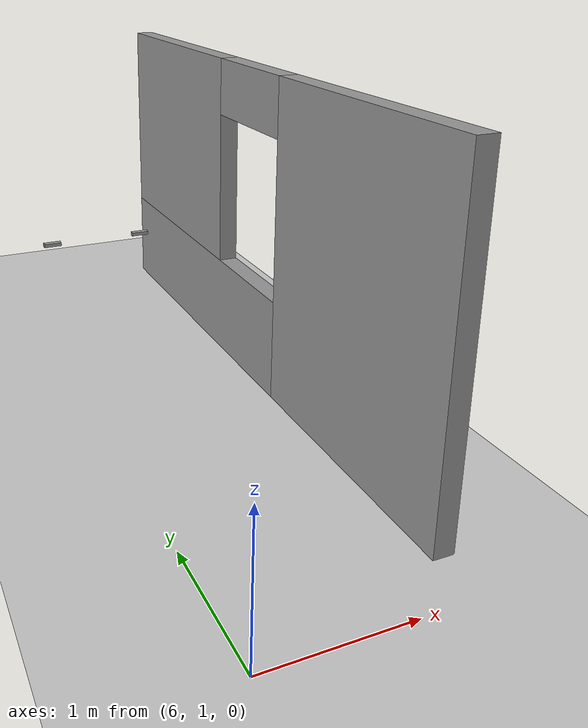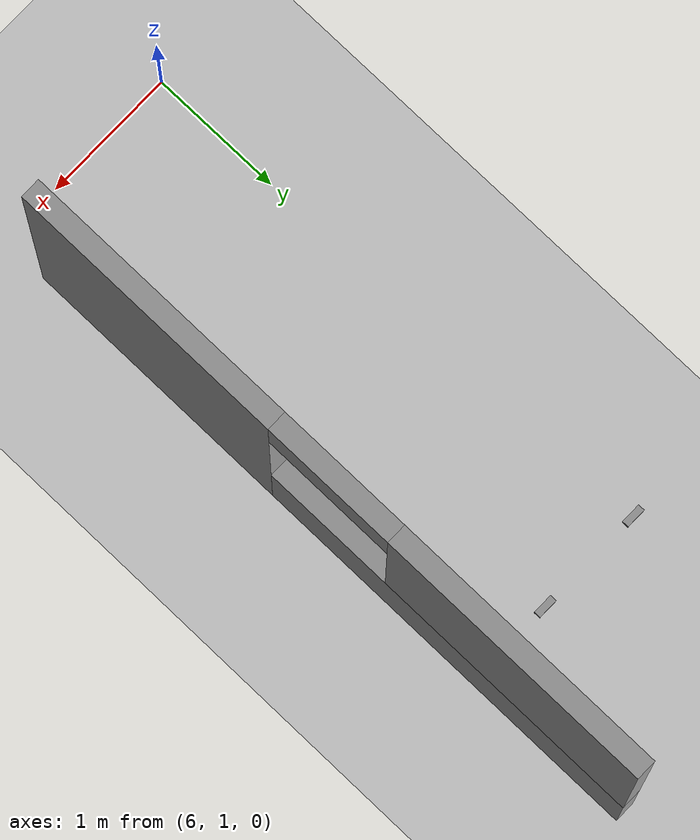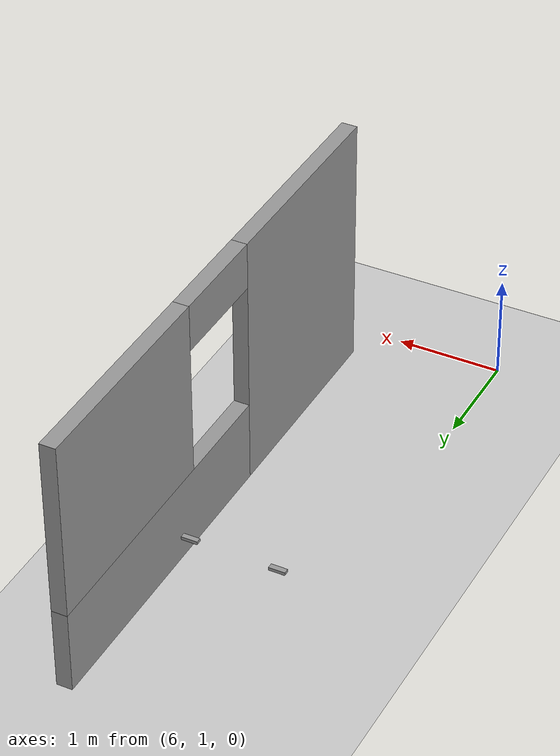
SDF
<sdf version="1.7">
 <world name="default">
  <model name="ground_plane">
   <static>1</static>
   <link name="link">
    <collision name="collision">
     <geometry><plane><normal>0 0 1</normal><size>100 100</size></plane></geometry>
     <surface>
      <contact><collide_bitmask>65535</collide_bitmask></contact>
      <friction><ode><mu>100</mu><mu2>50</mu2></ode></friction>
     </surface>
    </collision>
    <visual name="visual">
     <cast_shadows>0</cast_shadows>
     <geometry><plane><normal>0 0 1</normal><size>100 100</size></plane></geometry>
     <material>
      <script><uri>file://media/materials/scripts/gazebo.material</uri><name>Gazebo/Grey</name></script>
     </material>
    </visual>
   </link>
  </model>
  <model name="my_building_p4">
   <link name="Wall_40">
    <pose>7.425 0.965083 0 0 -0 1.5708</pose>
    <visual name="Wall_40_Visual_3">
     <pose>0.007391 0 2.275 0 -0 0</pose>
     <geometry><box><size>1 0.15 0.45</size></box></geometry>
     <material>
      <script><uri>file://media/materials/scripts/gazebo.material</uri><name>Gazebo/Grey</name></script>
      <ambient>1 1 1 1</ambient>
      <shader type="pixel"/>
     </material>
     <meta><layer>0</layer></meta>
    </visual>
    <visual name="Wall_40_Visual_0">
     <pose>-1.53381 0 1.25 0 -0 0</pose>
     <geometry><box><size>2.08239 0.15 2.5</size></box></geometry>
     <material>
      <script><uri>file://media/materials/scripts/gazebo.material</uri><name>Gazebo/Grey</name></script>
      <ambient>1 1 1 1</ambient>
      <shader type="pixel"/>
     </material>
     <meta><layer>0</layer></meta>
    </visual>
    <visual name="Wall_40_Visual_1">
     <pose>1.0412 0 0.4 0 -0 0</pose>
     <geometry><box><size>3.06761 0.15 0.8</size></box></geometry>
     <material>
      <script><uri>file://media/materials/scripts/gazebo.material</uri><name>Gazebo/Grey</name></script>
      <ambient>1 1 1 1</ambient>
      <shader type="pixel"/>
     </material>
     <meta><layer>0</layer></meta>
    </visual>
    <visual name="Wall_40_Visual_2">
     <pose>1.5412 0 1.65 0 -0 0</pose>
     <geometry><box><size>2.06761 0.15 1.7</size></box></geometry>
     <material>
      <script><uri>file://media/materials/scripts/gazebo.material</uri><name>Gazebo/Grey</name></script>
      <ambient>1 1 1 1</ambient>
      <shader type="pixel"/>
     </material>
     <meta><layer>0</layer></meta>
    </visual>
    <collision name="Wall_40_Collision_0">
     <pose>-1.53381 0 1.25 0 -0 0</pose>
     <geometry><box><size>2.08239 0.15 2.5</size></box></geometry>
     <surface>
      <friction>
       <ode><mu>1</mu><mu2>1</mu2><fdir1>0 0 0</fdir1><slip1>0</slip1><slip2>0</slip2></ode>
       <torsional>
        <coefficient>1</coefficient>
        <patch_radius>0</patch_radius>
        <surface_radius>0</surface_radius>
        <use_patch_radius>1</use_patch_radius>
        <ode><slip>0</slip></ode>
       </torsional>
      </friction>
      <bounce><restitution_coefficient>0</restitution_coefficient><threshold>1e+06</threshold></bounce>
      <contact>
       <collide_without_contact>0</collide_without_contact>
       <collide_without_contact_bitmask>1</collide_without_contact_bitmask>
       <collide_bitmask>1</collide_bitmask>
       <ode>
        <soft_cfm>0</soft_cfm>
        <soft_erp>0.2</soft_erp>
        <kp>1e+13</kp>
        <kd>1</kd>
        <max_vel>0.01</max_vel>
        <min_depth>0</min_depth>
       </ode>
       <bullet>
        <split_impulse>1</split_impulse>
        <split_impulse_penetration_threshold>-0.01</split_impulse_penetration_threshold>
        <soft_cfm>0</soft_cfm>
        <soft_erp>0.2</soft_erp>
        <kp>1e+13</kp>
        <kd>1</kd>
       </bullet>
      </contact>
     </surface>
    </collision>
    <collision name="Wall_40_Collision_3">
     <pose>0.007391 0 2.275 0 -0 0</pose>
     <geometry><box><size>1 0.15 0.45</size></box></geometry>
     <surface>
      <friction>
       <ode><mu>1</mu><mu2>1</mu2><fdir1>0 0 0</fdir1><slip1>0</slip1><slip2>0</slip2></ode>
       <torsional>
        <coefficient>1</coefficient>
        <patch_radius>0</patch_radius>
        <surface_radius>0</surface_radius>
        <use_patch_radius>1</use_patch_radius>
        <ode><slip>0</slip></ode>
       </torsional>
      </friction>
      <bounce><restitution_coefficient>0</restitution_coefficient><threshold>1e+06</threshold></bounce>
      <contact>
       <collide_without_contact>0</collide_without_contact>
       <collide_without_contact_bitmask>1</collide_without_contact_bitmask>
       <collide_bitmask>1</collide_bitmask>
       <ode>
        <soft_cfm>0</soft_cfm>
        <soft_erp>0.2</soft_erp>
        <kp>1e+13</kp>
        <kd>1</kd>
        <max_vel>0.01</max_vel>
        <min_depth>0</min_depth>
       </ode>
       <bullet>
        <split_impulse>1</split_impulse>
        <split_impulse_penetration_threshold>-0.01</split_impulse_penetration_threshold>
        <soft_cfm>0</soft_cfm>
        <soft_erp>0.2</soft_erp>
        <kp>1e+13</kp>
        <kd>1</kd>
       </bullet>
      </contact>
     </surface>
    </collision>
    <collision name="Wall_40_Collision_2">
     <pose>1.5412 0 1.65 0 -0 0</pose>
     <geometry><box><size>2.06761 0.15 1.7</size></box></geometry>
     <surface>
      <friction>
       <ode><mu>1</mu><mu2>1</mu2><fdir1>0 0 0</fdir1><slip1>0</slip1><slip2>0</slip2></ode>
       <torsional>
        <coefficient>1</coefficient>
        <patch_radius>0</patch_radius>
        <surface_radius>0</surface_radius>
        <use_patch_radius>1</use_patch_radius>
        <ode><slip>0</slip></ode>
       </torsional>
      </friction>
      <bounce><restitution_coefficient>0</restitution_coefficient><threshold>1e+06</threshold></bounce>
      <contact>
       <collide_without_contact>0</collide_without_contact>
       <collide_without_contact_bitmask>1</collide_without_contact_bitmask>
       <collide_bitmask>1</collide_bitmask>
       <ode>
        <soft_cfm>0</soft_cfm>
        <soft_erp>0.2</soft_erp>
        <kp>1e+13</kp>
        <kd>1</kd>
        <max_vel>0.01</max_vel>
        <min_depth>0</min_depth>
       </ode>
       <bullet>
        <split_impulse>1</split_impulse>
        <split_impulse_penetration_threshold>-0.01</split_impulse_penetration_threshold>
        <soft_cfm>0</soft_cfm>
        <soft_erp>0.2</soft_erp>
        <kp>1e+13</kp>
        <kd>1</kd>
       </bullet>
      </contact>
     </surface>
    </collision>
    <collision name="Wall_40_Collision_1">
     <pose>1.0412 0 0.4 0 -0 0</pose>
     <geometry><box><size>3.06761 0.15 0.8</size></box></geometry>
     <surface>
      <friction>
       <ode><mu>1</mu><mu2>1</mu2><fdir1>0 0 0</fdir1><slip1>0</slip1><slip2>0</slip2></ode>
       <torsional>
        <coefficient>1</coefficient>
        <patch_radius>0</patch_radius>
        <surface_radius>0</surface_radius>
        <use_patch_radius>1</use_patch_radius>
        <ode><slip>0</slip></ode>
       </torsional>
      </friction>
      <bounce><restitution_coefficient>0</restitution_coefficient><threshold>1e+06</threshold></bounce>
      <contact>
       <collide_without_contact>0</collide_without_contact>
       <collide_without_contact_bitmask>1</collide_without_contact_bitmask>
       <collide_bitmask>1</collide_bitmask>
       <ode>
        <soft_cfm>0</soft_cfm>
        <soft_erp>0.2</soft_erp>
        <kp>1e+13</kp>
        <kd>1</kd>
        <max_vel>0.01</max_vel>
        <min_depth>0</min_depth>
       </ode>
       <bullet>
        <split_impulse>1</split_impulse>
        <split_impulse_penetration_threshold>-0.01</split_impulse_penetration_threshold>
        <soft_cfm>0</soft_cfm>
        <soft_erp>0.2</soft_erp>
        <kp>1e+13</kp>
        <kd>1</kd>
       </bullet>
      </contact>
     </surface>
    </collision>
   </link>
   <static>1</static>
   <pose>-0.017657 2.964 0 0 -0 0</pose>
  </model>
  <model name="my_kitchen">
   <link name="link_clone_clone_clone_0_clone_clone_clone_clone_1_clone_clone">
    <inertial>
     <mass>1</mass>
     <inertia>
      <ixx>0.166667</ixx>
      <ixy>0</ixy>
      <ixz>0</ixz>
      <iyy>0.166667</iyy>
      <iyz>0</iyz>
      <izz>0.166667</izz>
     </inertia>
    </inertial>
    <pose>2.93965 -0.568069 0.338029 0 -0 0</pose>
    <gravity>0</gravity>
    <visual name="visual">
     <geometry><box><size>0.05 0.15 0.03</size></box></geometry>
     <material>
      <script><name>Gazebo/Grey</name><uri>file://media/materials/scripts/gazebo.material</uri></script>
      <shader type="pixel"><normal_map>__default__</normal_map></shader>
      <ambient>0.9 0.9 0.9 1</ambient>
      <diffuse>0.8 0.8 0.8 1</diffuse>
      <specular>0.01 0.01 0.01 1</specular>
      <emissive>0 0 0 1</emissive>
     </material>
     <pose>0 0 0.5 0 -0 1.5707</pose>
    </visual>
    <collision name="collision">
     <pose>0 0 0.5 0 -0 1.5707</pose>
     <geometry><box><size>0.05 0.15 0.03</size></box></geometry>
     <surface>
      <friction>
       <ode><mu>1</mu><mu2>1</mu2><fdir1>0 0 0</fdir1><slip1>0</slip1><slip2>0</slip2></ode>
       <torsional>
        <coefficient>1</coefficient>
        <patch_radius>0</patch_radius>
        <surface_radius>0</surface_radius>
        <use_patch_radius>1</use_patch_radius>
        <ode><slip>0</slip></ode>
       </torsional>
      </friction>
      <bounce><restitution_coefficient>0</restitution_coefficient><threshold>1e+06</threshold></bounce>
      <contact>
       <collide_without_contact>0</collide_without_contact>
       <collide_without_contact_bitmask>1</collide_without_contact_bitmask>
       <collide_bitmask>1</collide_bitmask>
       <ode>
        <soft_cfm>0</soft_cfm>
        <soft_erp>0.2</soft_erp>
        <kp>1e+13</kp>
        <kd>1</kd>
        <max_vel>0.01</max_vel>
        <min_depth>0</min_depth>
       </ode>
       <bullet>
        <split_impulse>1</split_impulse>
        <split_impulse_penetration_threshold>-0.01</split_impulse_penetration_threshold>
        <soft_cfm>0</soft_cfm>
        <soft_erp>0.2</soft_erp>
        <kp>1e+13</kp>
        <kd>1</kd>
       </bullet>
      </contact>
     </surface>
    </collision>
   </link>
   <link name="link_clone_clone_clone_0_clone_clone_clone_clone_1_clone_clone_0">
    <inertial>
     <mass>1</mass>
     <inertia>
      <ixx>0.166667</ixx>
      <ixy>0</ixy>
      <ixz>0</ixz>
      <iyy>0.166667</iyy>
      <iyz>0</iyz>
      <izz>0.166667</izz>
     </inertia>
    </inertial>
    <pose>3.74718 -0.573286 0.341646 0 -0 0</pose>
    <gravity>0</gravity>
    <visual name="visual">
     <geometry><box><size>0.05 0.15 0.03</size></box></geometry>
     <material>
      <script><name>Gazebo/Grey</name><uri>file://media/materials/scripts/gazebo.material</uri></script>
      <shader type="pixel"><normal_map>__default__</normal_map></shader>
      <ambient>0.9 0.9 0.9 1</ambient>
      <diffuse>0.8 0.8 0.8 1</diffuse>
      <specular>0.01 0.01 0.01 1</specular>
      <emissive>0 0 0 1</emissive>
     </material>
     <pose>0 0 0.5 0 -0 1.5707</pose>
    </visual>
    <collision name="collision">
     <pose>0 0 0.5 0 -0 1.5707</pose>
     <geometry><box><size>0.05 0.15 0.03</size></box></geometry>
     <surface>
      <friction>
       <ode><mu>1</mu><mu2>1</mu2><fdir1>0 0 0</fdir1><slip1>0</slip1><slip2>0</slip2></ode>
       <torsional>
        <coefficient>1</coefficient>
        <patch_radius>0</patch_radius>
        <surface_radius>0</surface_radius>
        <use_patch_radius>1</use_patch_radius>
        <ode><slip>0</slip></ode>
       </torsional>
      </friction>
      <bounce><restitution_coefficient>0</restitution_coefficient><threshold>1e+06</threshold></bounce>
      <contact>
       <collide_without_contact>0</collide_without_contact>
       <collide_without_contact_bitmask>1</collide_without_contact_bitmask>
       <collide_bitmask>1</collide_bitmask>
       <ode>
        <soft_cfm>0</soft_cfm>
        <soft_erp>0.2</soft_erp>
        <kp>1e+13</kp>
        <kd>1</kd>
        <max_vel>0.01</max_vel>
        <min_depth>0</min_depth>
       </ode>
       <bullet>
        <split_impulse>1</split_impulse>
        <split_impulse_penetration_threshold>-0.01</split_impulse_penetration_threshold>
        <soft_cfm>0</soft_cfm>
        <soft_erp>0.2</soft_erp>
        <kp>1e+13</kp>
        <kd>1</kd>
       </bullet>
      </contact>
     </surface>
    </collision>
   </link>
   <static>1</static>
   <pose>3.14913 5.84953 0 0 -0 0</pose>
  </model>
 </world>
</sdf>
